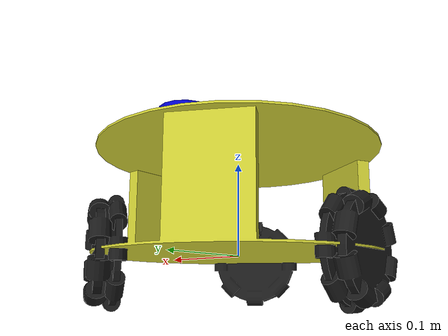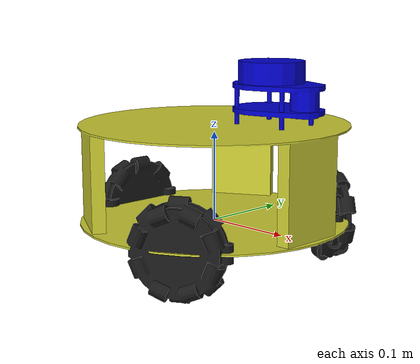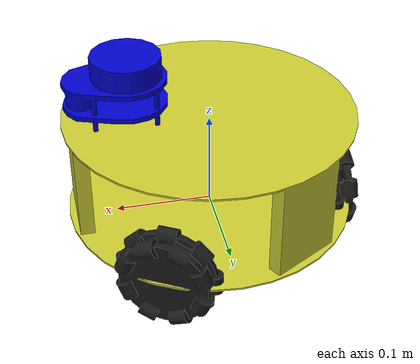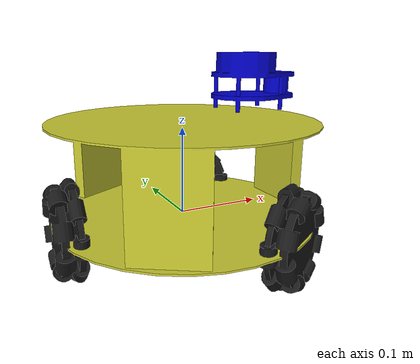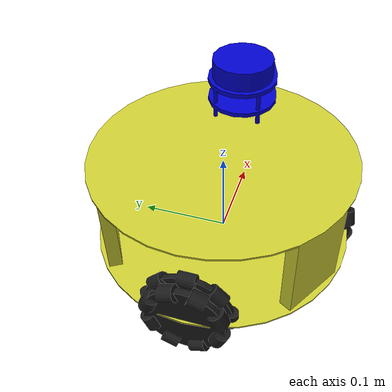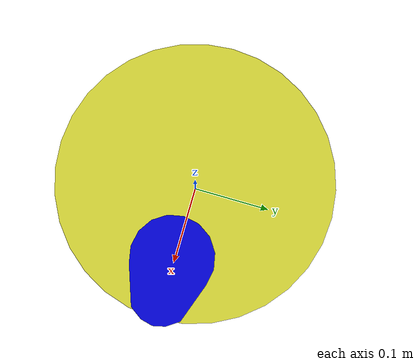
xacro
<?xml version="1.0"?>
<robot name="omnibot" xmlns:xacro="http://ros.org/wiki/xacro">

  <xacro:property name="PI" value="3.1415926535897931"/>
  <xacro:property name="mass" value="1" /> <!-- arbitrary value for mass -->
  <xacro:property name="height" value="0.115" />
  <xacro:property name="wheelrad" value="0.05" />
  <xacro:property name="wheellen" value="0.03" />
  <xacro:property name="R" value="0.15" />
  <xacro:property name="R2" value="0.125" />
  <xacro:property name="left_wheel_theta" value="${60/180*pi}" />
  <xacro:property name="back_wheel_theta" value="${180/180*pi}" />
  <xacro:property name="right_wheel_theta" value="${300/180*pi}" />

  <xacro:include filename="$(find nexus_base_ros)/urdf/3WD_Omnibot.gazebo" />
  <xacro:include filename="$(find nexus_base_ros)/urdf/materials.xacro" />

  <!-- Used for fixing robot to Gazebo 'base_link' -->
  <link name="footprint"/>

  <joint name="base_joint" type="fixed">
    <parent link="footprint"/>
    <child link="base_link"/>
  </joint>

  <link name="base_link">
    <visual>
      <geometry>
          <mesh filename="package://nexus_base_ros/meshes/omnibot_body.dae"/>
      </geometry>
      <material name="yellow"/>
    </visual>

		<collision>
			<origin xyz="0 0 ${height/2}" rpy="0 0 0" />
			<geometry>
				<cylinder radius="${R}" length="${height}"/>
			</geometry>
		</collision>

		<inertial>
      <origin xyz="0 0 0" rpy="0 0 0"/>
      <mass value="${mass}"/>
      <inertia
	      ixx="${mass / 12.0 * (3*(R*R) + height*height)}" ixy="0.0" ixz="0.0"
	      iyy="${mass / 12.0 * (3*(R*R) + height*height)}" iyz="0.0"
	      izz="${mass / 2.0 * (R*R)}"/>
    </inertial>
  </link>

	<link name="left_wheel_link">
		<visual>
			<origin  rpy="${PI/2} 0 0" />
			<geometry>
				<mesh filename="package://nexus_base_ros/meshes/mecanum_wheel.dae"/>
			</geometry>
			<material name="grey"/>
		</visual>

		<collision>
			<origin xyz="0 0 0" rpy="${PI/2} 0 0" />
			<geometry>
				<cylinder radius="${wheelrad}" length="${wheellen}"/>
			</geometry>
		</collision>

		<inertial>
      <origin xyz="0 0 ${wheellen/2}" rpy="0 0 0"/>
      <mass value="${mass}"/>
      <inertia
	      ixx="${mass / 12.0 * (3*(wheelrad*wheelrad) + wheellen*wheellen)}" ixy="0.0" ixz="0.0"
	      iyy="${mass / 12.0 * (3*(wheelrad*wheelrad) + wheellen*wheellen)}" iyz="0.0"
	      izz="${mass / 2.0 * (wheelrad*wheelrad)}"/>
    </inertial>
	</link>

	<joint name="left_wheel_joint" type="continuous">
		<axis xyz="0 1 0" rpy="0 0 0" />
		<parent link="base_link"/>
		<child link="left_wheel_link"/>
		<origin xyz="${R2*cos(left_wheel_theta)} ${R2*sin(left_wheel_theta)} 0" rpy="0 0 ${left_wheel_theta+PI/2}"/>
		<dynamics damping="0.7"/>
	</joint>

	<link name="back_wheel_link">
		<visual>
			<origin  rpy="${back_wheel_theta+PI/2} 0 0" />
			<geometry>
				<mesh filename="package://nexus_base_ros/meshes/mecanum_wheel.dae"/>
			</geometry>
			<material name="grey"/>
		</visual>

		<collision>
			<origin xyz="0 0 0" rpy="${PI/2} 0 0" />
			<geometry>
				<cylinder radius="${wheelrad}" length="${wheellen}"/>
			</geometry>
		</collision>

		<inertial>
      <origin xyz="0 0 ${wheellen/2}" rpy="0 0 0"/>
      <mass value="${mass}"/>
      <inertia
	      ixx="${mass / 12.0 * (3*(wheelrad*wheelrad) + wheellen*wheellen)}" ixy="0.0" ixz="0.0"
	      iyy="${mass / 12.0 * (3*(wheelrad*wheelrad) + wheellen*wheellen)}" iyz="0.0"
	      izz="${mass / 2.0 * (wheelrad*wheelrad)}"/>
    </inertial>
	</link>

	<joint name="back_wheel_joint" type="continuous">
		<axis xyz="0 1 0" rpy="0 0 0"/>
		<parent link="base_link"/>
		<child link="back_wheel_link"/>
		<origin xyz="${R2*cos(back_wheel_theta)} ${R2*sin(back_wheel_theta)} 0" rpy="0 0 ${back_wheel_theta-PI/2}"/>
		<dynamics damping="0.7"/>
	</joint>

	<link name="right_wheel_link">
		<visual>
		<origin  rpy="${PI/2} 0 0" />
		<geometry>
			<mesh filename="package://nexus_base_ros/meshes/mecanum_wheel.dae"/>
		</geometry>
		<material name="grey"/>
		</visual>

		<collision>
			<origin xyz="0 0 0" rpy="${PI/2} 0 0" />
			<geometry>
				<cylinder radius="${wheelrad}" length="${wheellen}"/>
			</geometry>
		</collision>

		<inertial>
      <origin xyz="0 0 ${wheellen/2}" rpy="0 0 0"/>
      <mass value="${mass}"/>
      <inertia
	      ixx="${mass / 12.0 * (3*(wheelrad*wheelrad) + wheellen*wheellen)}" ixy="0.0" ixz="0.0"
	      iyy="${mass / 12.0 * (3*(wheelrad*wheelrad) + wheellen*wheellen)}" iyz="0.0"
	      izz="${mass / 2.0 * (wheelrad*wheelrad)}"/>
    </inertial>
	</link>

	<joint name="right_wheel_joint" type="continuous">
		<axis xyz="0 1 0" rpy="0 0 0" />
		<parent link="base_link"/>
		<child link="right_wheel_link"/>
		<origin xyz="${R2*cos(right_wheel_theta)} ${R2*sin(right_wheel_theta)} 0" rpy="0 0 ${right_wheel_theta+PI/2}"/>
		<dynamics damping="0.7"/>
	</joint>

	<link name="lidar_link">
		<visual>
		<origin xyz="0 0 0" rpy="0 0 0"/>
		<geometry>
			<mesh filename="package://nexus_base_ros/meshes/RPLIDAR_A1M8.dae"/>
		</geometry>
		<material name="dark_grey"/>
		</visual>
	</link>
	<joint name="lidar_joint" type="fixed">
		<parent link="base_link"/>
		<child link="lidar_link"/>
		<origin xyz="0.095 0 0.115" rpy="0 0 0" />
	</joint>
	<link name="laser_frame"/>
	<joint name="laser_lidar_joint" type="fixed">
		<parent link="lidar_link"/>
		<child link="laser_frame"/>
		<origin xyz="0 0 0.06" rpy="0 0 0" />
	</joint>

  <transmission name="left_wheel_tran">
    <type>transmission_interface/SimpleTransmission</type>
    <joint name="left_wheel_joint">
      <hardwareInterface>hardware_interface/EffortJointInterface</hardwareInterface>
    </joint>
    <actuator name="left_wheel_motor">
      <hardwareInterface>hardware_interface/EffortJointInterface</hardwareInterface>
      <mechanicalReduction>1</mechanicalReduction>
    </actuator>
  </transmission>

  <transmission name="back_wheel_tran">
    <type>transmission_interface/SimpleTransmission</type>
    <joint name="back_wheel_joint">
      <hardwareInterface>hardware_interface/EffortJointInterface</hardwareInterface>
    </joint>
    <actuator name="back_wheel_motor">
      <hardwareInterface>hardware_interface/EffortJointInterface</hardwareInterface>
      <mechanicalReduction>1</mechanicalReduction>
    </actuator>
  </transmission>

  <transmission name="right_wheel_tran">
    <type>transmission_interface/SimpleTransmission</type>
    <joint name="right_wheel_joint">
      <hardwareInterface>hardware_interface/EffortJointInterface</hardwareInterface>
    </joint>
    <actuator name="right_wheel_motor">
      <hardwareInterface>hardware_interface/EffortJointInterface</hardwareInterface>
      <mechanicalReduction>1</mechanicalReduction>
    </actuator>
  </transmission>
</robot>

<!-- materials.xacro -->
<robot>
<material name="dark_grey">
    <color rgba="0 0 0.8 1"/>
  </material>

  <material name="grey">
    <color rgba="0.1 0.1 0.1 1"/>
  </material>

  <material name="yellow">
    <color rgba="0.8 0.8 0.2 1"/>
  </material>
</robot>
